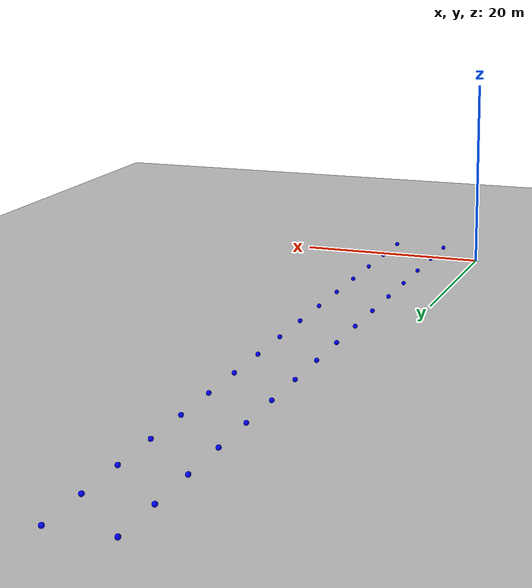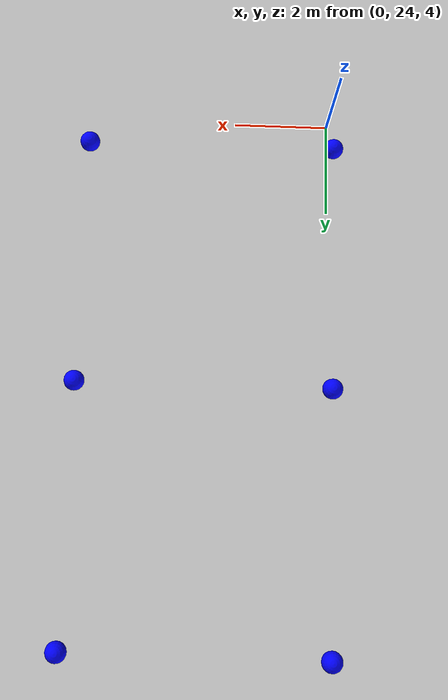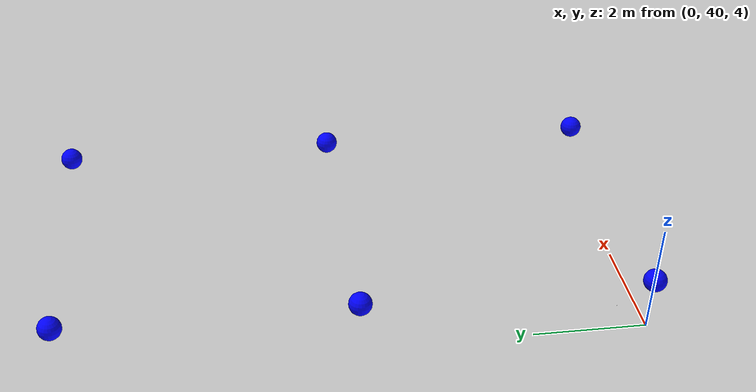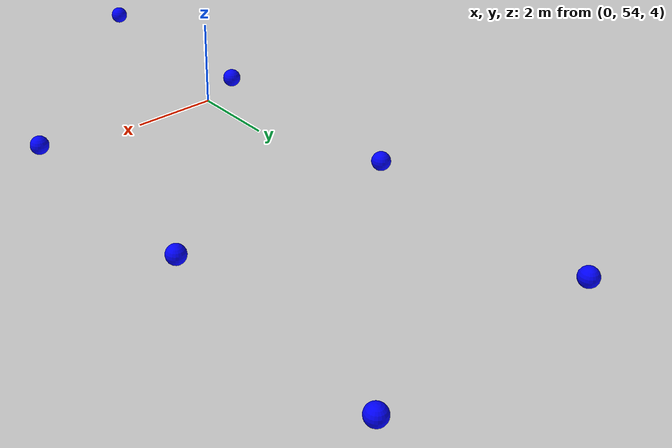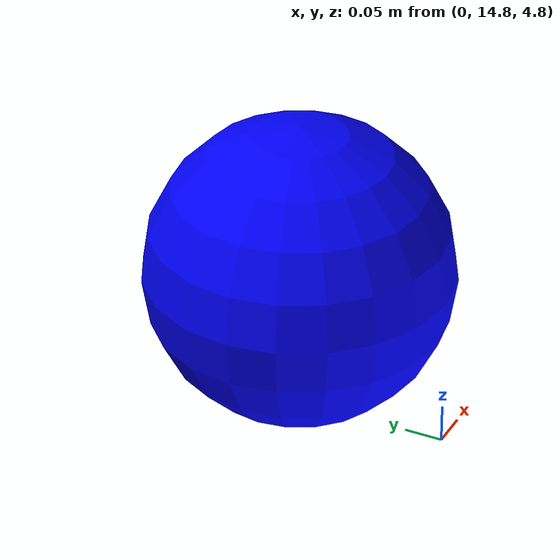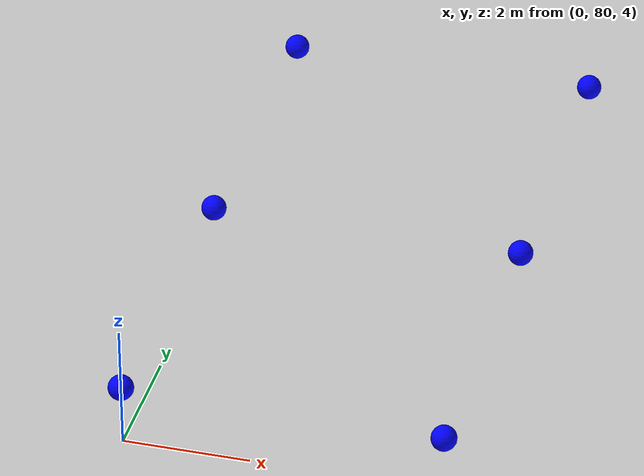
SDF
<sdf version="1.7">
 <world name="default">
  <physics type="ode">
   <ode>
    <solver>
     <type>quick</type>
     <iters>100</iters>
     <sor>1</sor>
     <use_dynamic_moi_rescaling>0</use_dynamic_moi_rescaling>
    </solver>
    <constraints>
     <cfm>0</cfm>
     <erp>0.9</erp>
     <contact_max_correcting_vel>0.1</contact_max_correcting_vel>
     <contact_surface_layer>0</contact_surface_layer>
    </constraints>
   </ode>
   <max_step_size>0.001</max_step_size>
   <real_time_factor>1</real_time_factor>
  </physics>
  <model name="ground_plane">
   <pose>0 520 0 0 0 -1.5708</pose>
   <static>1</static>
   <link name="link">
    <collision name="collision">
     <geometry><plane><normal>0 0 1</normal><size>5000 5000</size></plane></geometry>
     <surface><friction><ode><mu>1</mu><mu2>1</mu2></ode></friction></surface>
    </collision>
    <visual name="runway">
     <pose>0 0 0.005 0 -0 0</pose>
     <cast_shadows>0</cast_shadows>
     <geometry><plane><normal>0 0 1</normal><size>1829 45</size></plane></geometry>
     <material>
      <script><uri>file://media/materials/scripts/gazebo.material</uri><name>Gazebo/Runway</name></script>
     </material>
    </visual>
    <visual name="grass">
     <pose>0 0 -0.1 0 -0 0</pose>
     <cast_shadows>0</cast_shadows>
     <geometry><plane><normal>0 0 1</normal><size>5000 5000</size></plane></geometry>
     <material>
      <script><uri>file://media/materials/scripts/gazebo.material</uri><name>Gazebo/Grass</name></script>
     </material>
    </visual>
   </link>
  </model>
  <light name="sun" type="directional">
   <pose>0 0 10 0 -0 0</pose>
   <diffuse>0.8 0.8 0.8 1</diffuse>
   <specular>0.2 0.2 0.2 1</specular>
   <attenuation>
    <range>1000</range>
    <constant>0.9</constant>
    <linear>0.01</linear>
    <quadratic>0.001</quadratic>
   </attenuation>
   <direction>-0.5 0.1 -0.9</direction>
   <spot><inner_angle>0</inner_angle><outer_angle>0</outer_angle><falloff>0</falloff></spot>
  </light>
  <gravity>0 0 -9.8</gravity>
  <magnetic_field>6e-06 2.3e-05 -4.2e-05</magnetic_field>
  <atmosphere type="adiabatic"/>
  <scene><ambient>0.4 0.4 0.4 1</ambient><background>0.7 0.7 0.7 1</background><shadows>1</shadows></scene>
  <spherical_coordinates>
   <surface_model>EARTH_WGS84</surface_model>
   <latitude_deg>0</latitude_deg>
   <longitude_deg>0</longitude_deg>
   <elevation>0</elevation>
   <heading_deg>0</heading_deg>
  </spherical_coordinates>
  <model name="origin.origin">
   <link name="link">
    <inertial>
     <inertia><ixx>0.1</ixx><ixy>0</ixy><ixz>0</ixz><iyy>0.1</iyy><iyz>0</iyz><izz>0.1</izz></inertia>
     <mass>1</mass>
    </inertial>
    <gravity>0</gravity>
    <visual name="visual">
     <geometry><sphere><radius>0.2</radius></sphere></geometry>
     <material>
      <script><name>Gazebo/Grey</name><uri>file://media/materials/scripts/gazebo.material</uri></script>
      <shader type="pixel"><normal_map>__default__</normal_map></shader>
      <ambient>0.3 0.3 0.3 1</ambient>
      <diffuse>1.0 1.0 1.0 1</diffuse>
      <specular>0.01 0.01 0.01 1</specular>
      <emissive>0 0 0 1</emissive>
     </material>
     <transparency>0.05</transparency>
    </visual>
   </link>
   <static>0</static>
  </model>
  <model name="traj_1.0">
   <pose>0.0 15.0 5.0 0 0 0</pose>
   <link name="link">
    <inertial>
     <inertia><ixx>0.1</ixx><ixy>0</ixy><ixz>0</ixz><iyy>0.1</iyy><iyz>0</iyz><izz>0.1</izz></inertia>
     <mass>1</mass>
    </inertial>
    <gravity>0</gravity>
    <visual name="visual">
     <geometry><sphere><radius>0.2</radius></sphere></geometry>
     <material>
      <script><name>Gazebo/Grey</name><uri>file://media/materials/scripts/gazebo.material</uri></script>
      <shader type="pixel"><normal_map>__default__</normal_map></shader>
      <ambient>0.3 0.3 0.3 1</ambient>
      <diffuse>0.0 0.0 1.0 1</diffuse>
      <specular>0.01 0.01 0.01 1</specular>
      <emissive>0 0 0 1</emissive>
     </material>
     <transparency>0.05</transparency>
    </visual>
   </link>
   <static>0</static>
  </model>
  <model name="traj_1.1">
   <pose>0.0 20.0 5.0 0 0 0</pose>
   <link name="link">
    <inertial>
     <inertia><ixx>0.1</ixx><ixy>0</ixy><ixz>0</ixz><iyy>0.1</iyy><iyz>0</iyz><izz>0.1</izz></inertia>
     <mass>1</mass>
    </inertial>
    <gravity>0</gravity>
    <visual name="visual">
     <geometry><sphere><radius>0.2</radius></sphere></geometry>
     <material>
      <script><name>Gazebo/Grey</name><uri>file://media/materials/scripts/gazebo.material</uri></script>
      <shader type="pixel"><normal_map>__default__</normal_map></shader>
      <ambient>0.3 0.3 0.3 1</ambient>
      <diffuse>0.0 0.0 1.0 1</diffuse>
      <specular>0.01 0.01 0.01 1</specular>
      <emissive>0 0 0 1</emissive>
     </material>
     <transparency>0.05</transparency>
    </visual>
   </link>
   <static>0</static>
  </model>
  <model name="traj_1.2">
   <pose>5.0 20.0 5.0 0 0 0</pose>
   <link name="link">
    <inertial>
     <inertia><ixx>0.1</ixx><ixy>0</ixy><ixz>0</ixz><iyy>0.1</iyy><iyz>0</iyz><izz>0.1</izz></inertia>
     <mass>1</mass>
    </inertial>
    <gravity>0</gravity>
    <visual name="visual">
     <geometry><sphere><radius>0.2</radius></sphere></geometry>
     <material>
      <script><name>Gazebo/Grey</name><uri>file://media/materials/scripts/gazebo.material</uri></script>
      <shader type="pixel"><normal_map>__default__</normal_map></shader>
      <ambient>0.3 0.3 0.3 1</ambient>
      <diffuse>0.0 0.0 1.0 1</diffuse>
      <specular>0.01 0.01 0.01 1</specular>
      <emissive>0 0 0 1</emissive>
     </material>
     <transparency>0.05</transparency>
    </visual>
   </link>
   <static>0</static>
  </model>
  <model name="traj_1.3">
   <pose>5.0 15.0 5.0 0 0 0</pose>
   <link name="link">
    <inertial>
     <inertia><ixx>0.1</ixx><ixy>0</ixy><ixz>0</ixz><iyy>0.1</iyy><iyz>0</iyz><izz>0.1</izz></inertia>
     <mass>1</mass>
    </inertial>
    <gravity>0</gravity>
    <visual name="visual">
     <geometry><sphere><radius>0.2</radius></sphere></geometry>
     <material>
      <script><name>Gazebo/Grey</name><uri>file://media/materials/scripts/gazebo.material</uri></script>
      <shader type="pixel"><normal_map>__default__</normal_map></shader>
      <ambient>0.3 0.3 0.3 1</ambient>
      <diffuse>0.0 0.0 1.0 1</diffuse>
      <specular>0.01 0.01 0.01 1</specular>
      <emissive>0 0 0 1</emissive>
     </material>
     <transparency>0.05</transparency>
    </visual>
   </link>
   <static>0</static>
  </model>
  <model name="traj_1.4">
   <pose>0.0 15.0 5.0 0 0 0</pose>
   <link name="link">
    <inertial>
     <inertia><ixx>0.1</ixx><ixy>0</ixy><ixz>0</ixz><iyy>0.1</iyy><iyz>0</iyz><izz>0.1</izz></inertia>
     <mass>1</mass>
    </inertial>
    <gravity>0</gravity>
    <visual name="visual">
     <geometry><sphere><radius>0.2</radius></sphere></geometry>
     <material>
      <script><name>Gazebo/Grey</name><uri>file://media/materials/scripts/gazebo.material</uri></script>
      <shader type="pixel"><normal_map>__default__</normal_map></shader>
      <ambient>0.3 0.3 0.3 1</ambient>
      <diffuse>0.0 0.0 1.0 1</diffuse>
      <specular>0.01 0.01 0.01 1</specular>
      <emissive>0 0 0 1</emissive>
     </material>
     <transparency>0.05</transparency>
    </visual>
   </link>
   <static>0</static>
  </model>
  <model name="traj_2.0">
   <pose>0.0 25.0 5.0 0 0 0</pose>
   <link name="link">
    <inertial>
     <inertia><ixx>0.1</ixx><ixy>0</ixy><ixz>0</ixz><iyy>0.1</iyy><iyz>0</iyz><izz>0.1</izz></inertia>
     <mass>1</mass>
    </inertial>
    <gravity>0</gravity>
    <visual name="visual">
     <geometry><sphere><radius>0.2</radius></sphere></geometry>
     <material>
      <script><name>Gazebo/Grey</name><uri>file://media/materials/scripts/gazebo.material</uri></script>
      <shader type="pixel"><normal_map>__default__</normal_map></shader>
      <ambient>0.3 0.3 0.3 1</ambient>
      <diffuse>0.0 0.0 1.0 1</diffuse>
      <specular>0.01 0.01 0.01 1</specular>
      <emissive>0 0 0 1</emissive>
     </material>
     <transparency>0.05</transparency>
    </visual>
   </link>
   <static>0</static>
  </model>
  <model name="traj_2.1">
   <pose>0.0 30.0 5.0 0 0 0</pose>
   <link name="link">
    <inertial>
     <inertia><ixx>0.1</ixx><ixy>0</ixy><ixz>0</ixz><iyy>0.1</iyy><iyz>0</iyz><izz>0.1</izz></inertia>
     <mass>1</mass>
    </inertial>
    <gravity>0</gravity>
    <visual name="visual">
     <geometry><sphere><radius>0.2</radius></sphere></geometry>
     <material>
      <script><name>Gazebo/Grey</name><uri>file://media/materials/scripts/gazebo.material</uri></script>
      <shader type="pixel"><normal_map>__default__</normal_map></shader>
      <ambient>0.3 0.3 0.3 1</ambient>
      <diffuse>0.0 0.0 1.0 1</diffuse>
      <specular>0.01 0.01 0.01 1</specular>
      <emissive>0 0 0 1</emissive>
     </material>
     <transparency>0.05</transparency>
    </visual>
   </link>
   <static>0</static>
  </model>
  <model name="traj_2.2">
   <pose>5.0 30.0 5.0 0 0 0</pose>
   <link name="link">
    <inertial>
     <inertia><ixx>0.1</ixx><ixy>0</ixy><ixz>0</ixz><iyy>0.1</iyy><iyz>0</iyz><izz>0.1</izz></inertia>
     <mass>1</mass>
    </inertial>
    <gravity>0</gravity>
    <visual name="visual">
     <geometry><sphere><radius>0.2</radius></sphere></geometry>
     <material>
      <script><name>Gazebo/Grey</name><uri>file://media/materials/scripts/gazebo.material</uri></script>
      <shader type="pixel"><normal_map>__default__</normal_map></shader>
      <ambient>0.3 0.3 0.3 1</ambient>
      <diffuse>0.0 0.0 1.0 1</diffuse>
      <specular>0.01 0.01 0.01 1</specular>
      <emissive>0 0 0 1</emissive>
     </material>
     <transparency>0.05</transparency>
    </visual>
   </link>
   <static>0</static>
  </model>
  <model name="traj_2.3">
   <pose>5.0 25.0 5.0 0 0 0</pose>
   <link name="link">
    <inertial>
     <inertia><ixx>0.1</ixx><ixy>0</ixy><ixz>0</ixz><iyy>0.1</iyy><iyz>0</iyz><izz>0.1</izz></inertia>
     <mass>1</mass>
    </inertial>
    <gravity>0</gravity>
    <visual name="visual">
     <geometry><sphere><radius>0.2</radius></sphere></geometry>
     <material>
      <script><name>Gazebo/Grey</name><uri>file://media/materials/scripts/gazebo.material</uri></script>
      <shader type="pixel"><normal_map>__default__</normal_map></shader>
      <ambient>0.3 0.3 0.3 1</ambient>
      <diffuse>0.0 0.0 1.0 1</diffuse>
      <specular>0.01 0.01 0.01 1</specular>
      <emissive>0 0 0 1</emissive>
     </material>
     <transparency>0.05</transparency>
    </visual>
   </link>
   <static>0</static>
  </model>
  <model name="traj_2.4">
   <pose>0.0 25.0 5.0 0 0 0</pose>
   <link name="link">
    <inertial>
     <inertia><ixx>0.1</ixx><ixy>0</ixy><ixz>0</ixz><iyy>0.1</iyy><iyz>0</iyz><izz>0.1</izz></inertia>
     <mass>1</mass>
    </inertial>
    <gravity>0</gravity>
    <visual name="visual">
     <geometry><sphere><radius>0.2</radius></sphere></geometry>
     <material>
      <script><name>Gazebo/Grey</name><uri>file://media/materials/scripts/gazebo.material</uri></script>
      <shader type="pixel"><normal_map>__default__</normal_map></shader>
      <ambient>0.3 0.3 0.3 1</ambient>
      <diffuse>0.0 0.0 1.0 1</diffuse>
      <specular>0.01 0.01 0.01 1</specular>
      <emissive>0 0 0 1</emissive>
     </material>
     <transparency>0.05</transparency>
    </visual>
   </link>
   <static>0</static>
  </model>
  <model name="traj_3.0">
   <pose>0.0 35.0 5.0 0 0 0</pose>
   <link name="link">
    <inertial>
     <inertia><ixx>0.1</ixx><ixy>0</ixy><ixz>0</ixz><iyy>0.1</iyy><iyz>0</iyz><izz>0.1</izz></inertia>
     <mass>1</mass>
    </inertial>
    <gravity>0</gravity>
    <visual name="visual">
     <geometry><sphere><radius>0.2</radius></sphere></geometry>
     <material>
      <script><name>Gazebo/Grey</name><uri>file://media/materials/scripts/gazebo.material</uri></script>
      <shader type="pixel"><normal_map>__default__</normal_map></shader>
      <ambient>0.3 0.3 0.3 1</ambient>
      <diffuse>0.0 0.0 1.0 1</diffuse>
      <specular>0.01 0.01 0.01 1</specular>
      <emissive>0 0 0 1</emissive>
     </material>
     <transparency>0.05</transparency>
    </visual>
   </link>
   <static>0</static>
  </model>
  <model name="traj_3.1">
   <pose>0.0 40.0 5.0 0 0 0</pose>
   <link name="link">
    <inertial>
     <inertia><ixx>0.1</ixx><ixy>0</ixy><ixz>0</ixz><iyy>0.1</iyy><iyz>0</iyz><izz>0.1</izz></inertia>
     <mass>1</mass>
    </inertial>
    <gravity>0</gravity>
    <visual name="visual">
     <geometry><sphere><radius>0.2</radius></sphere></geometry>
     <material>
      <script><name>Gazebo/Grey</name><uri>file://media/materials/scripts/gazebo.material</uri></script>
      <shader type="pixel"><normal_map>__default__</normal_map></shader>
      <ambient>0.3 0.3 0.3 1</ambient>
      <diffuse>0.0 0.0 1.0 1</diffuse>
      <specular>0.01 0.01 0.01 1</specular>
      <emissive>0 0 0 1</emissive>
     </material>
     <transparency>0.05</transparency>
    </visual>
   </link>
   <static>0</static>
  </model>
  <model name="traj_3.2">
   <pose>5.0 40.0 5.0 0 0 0</pose>
   <link name="link">
    <inertial>
     <inertia><ixx>0.1</ixx><ixy>0</ixy><ixz>0</ixz><iyy>0.1</iyy><iyz>0</iyz><izz>0.1</izz></inertia>
     <mass>1</mass>
    </inertial>
    <gravity>0</gravity>
    <visual name="visual">
     <geometry><sphere><radius>0.2</radius></sphere></geometry>
     <material>
      <script><name>Gazebo/Grey</name><uri>file://media/materials/scripts/gazebo.material</uri></script>
      <shader type="pixel"><normal_map>__default__</normal_map></shader>
      <ambient>0.3 0.3 0.3 1</ambient>
      <diffuse>0.0 0.0 1.0 1</diffuse>
      <specular>0.01 0.01 0.01 1</specular>
      <emissive>0 0 0 1</emissive>
     </material>
     <transparency>0.05</transparency>
    </visual>
   </link>
   <static>0</static>
  </model>
  <model name="traj_3.3">
   <pose>5.0 35.0 5.0 0 0 0</pose>
   <link name="link">
    <inertial>
     <inertia><ixx>0.1</ixx><ixy>0</ixy><ixz>0</ixz><iyy>0.1</iyy><iyz>0</iyz><izz>0.1</izz></inertia>
     <mass>1</mass>
    </inertial>
    <gravity>0</gravity>
    <visual name="visual">
     <geometry><sphere><radius>0.2</radius></sphere></geometry>
     <material>
      <script><name>Gazebo/Grey</name><uri>file://media/materials/scripts/gazebo.material</uri></script>
      <shader type="pixel"><normal_map>__default__</normal_map></shader>
      <ambient>0.3 0.3 0.3 1</ambient>
      <diffuse>0.0 0.0 1.0 1</diffuse>
      <specular>0.01 0.01 0.01 1</specular>
      <emissive>0 0 0 1</emissive>
     </material>
     <transparency>0.05</transparency>
    </visual>
   </link>
   <static>0</static>
  </model>
  <model name="traj_3.4">
   <pose>0.0 35.0 5.0 0 0 0</pose>
   <link name="link">
    <inertial>
     <inertia><ixx>0.1</ixx><ixy>0</ixy><ixz>0</ixz><iyy>0.1</iyy><iyz>0</iyz><izz>0.1</izz></inertia>
     <mass>1</mass>
    </inertial>
    <gravity>0</gravity>
    <visual name="visual">
     <geometry><sphere><radius>0.2</radius></sphere></geometry>
     <material>
      <script><name>Gazebo/Grey</name><uri>file://media/materials/scripts/gazebo.material</uri></script>
      <shader type="pixel"><normal_map>__default__</normal_map></shader>
      <ambient>0.3 0.3 0.3 1</ambient>
      <diffuse>0.0 0.0 1.0 1</diffuse>
      <specular>0.01 0.01 0.01 1</specular>
      <emissive>0 0 0 1</emissive>
     </material>
     <transparency>0.05</transparency>
    </visual>
   </link>
   <static>0</static>
  </model>
  <model name="traj_4.0">
   <pose>0.0 45.0 5.0 0 0 0</pose>
   <link name="link">
    <inertial>
     <inertia><ixx>0.1</ixx><ixy>0</ixy><ixz>0</ixz><iyy>0.1</iyy><iyz>0</iyz><izz>0.1</izz></inertia>
     <mass>1</mass>
    </inertial>
    <gravity>0</gravity>
    <visual name="visual">
     <geometry><sphere><radius>0.2</radius></sphere></geometry>
     <material>
      <script><name>Gazebo/Grey</name><uri>file://media/materials/scripts/gazebo.material</uri></script>
      <shader type="pixel"><normal_map>__default__</normal_map></shader>
      <ambient>0.3 0.3 0.3 1</ambient>
      <diffuse>0.0 0.0 1.0 1</diffuse>
      <specular>0.01 0.01 0.01 1</specular>
      <emissive>0 0 0 1</emissive>
     </material>
     <transparency>0.05</transparency>
    </visual>
   </link>
   <static>0</static>
  </model>
  <model name="traj_4.1">
   <pose>0.0 50.0 5.0 0 0 0</pose>
   <link name="link">
    <inertial>
     <inertia><ixx>0.1</ixx><ixy>0</ixy><ixz>0</ixz><iyy>0.1</iyy><iyz>0</iyz><izz>0.1</izz></inertia>
     <mass>1</mass>
    </inertial>
    <gravity>0</gravity>
    <visual name="visual">
     <geometry><sphere><radius>0.2</radius></sphere></geometry>
     <material>
      <script><name>Gazebo/Grey</name><uri>file://media/materials/scripts/gazebo.material</uri></script>
      <shader type="pixel"><normal_map>__default__</normal_map></shader>
      <ambient>0.3 0.3 0.3 1</ambient>
      <diffuse>0.0 0.0 1.0 1</diffuse>
      <specular>0.01 0.01 0.01 1</specular>
      <emissive>0 0 0 1</emissive>
     </material>
     <transparency>0.05</transparency>
    </visual>
   </link>
   <static>0</static>
  </model>
  <model name="traj_4.2">
   <pose>5.0 50.0 5.0 0 0 0</pose>
   <link name="link">
    <inertial>
     <inertia><ixx>0.1</ixx><ixy>0</ixy><ixz>0</ixz><iyy>0.1</iyy><iyz>0</iyz><izz>0.1</izz></inertia>
     <mass>1</mass>
    </inertial>
    <gravity>0</gravity>
    <visual name="visual">
     <geometry><sphere><radius>0.2</radius></sphere></geometry>
     <material>
      <script><name>Gazebo/Grey</name><uri>file://media/materials/scripts/gazebo.material</uri></script>
      <shader type="pixel"><normal_map>__default__</normal_map></shader>
      <ambient>0.3 0.3 0.3 1</ambient>
      <diffuse>0.0 0.0 1.0 1</diffuse>
      <specular>0.01 0.01 0.01 1</specular>
      <emissive>0 0 0 1</emissive>
     </material>
     <transparency>0.05</transparency>
    </visual>
   </link>
   <static>0</static>
  </model>
  <model name="traj_4.3">
   <pose>5.0 45.0 5.0 0 0 0</pose>
   <link name="link">
    <inertial>
     <inertia><ixx>0.1</ixx><ixy>0</ixy><ixz>0</ixz><iyy>0.1</iyy><iyz>0</iyz><izz>0.1</izz></inertia>
     <mass>1</mass>
    </inertial>
    <gravity>0</gravity>
    <visual name="visual">
     <geometry><sphere><radius>0.2</radius></sphere></geometry>
     <material>
      <script><name>Gazebo/Grey</name><uri>file://media/materials/scripts/gazebo.material</uri></script>
      <shader type="pixel"><normal_map>__default__</normal_map></shader>
      <ambient>0.3 0.3 0.3 1</ambient>
      <diffuse>0.0 0.0 1.0 1</diffuse>
      <specular>0.01 0.01 0.01 1</specular>
      <emissive>0 0 0 1</emissive>
     </material>
     <transparency>0.05</transparency>
    </visual>
   </link>
   <static>0</static>
  </model>
  <model name="traj_4.4">
   <pose>0.0 45.0 5.0 0 0 0</pose>
   <link name="link">
    <inertial>
     <inertia><ixx>0.1</ixx><ixy>0</ixy><ixz>0</ixz><iyy>0.1</iyy><iyz>0</iyz><izz>0.1</izz></inertia>
     <mass>1</mass>
    </inertial>
    <gravity>0</gravity>
    <visual name="visual">
     <geometry><sphere><radius>0.2</radius></sphere></geometry>
     <material>
      <script><name>Gazebo/Grey</name><uri>file://media/materials/scripts/gazebo.material</uri></script>
      <shader type="pixel"><normal_map>__default__</normal_map></shader>
      <ambient>0.3 0.3 0.3 1</ambient>
      <diffuse>0.0 0.0 1.0 1</diffuse>
      <specular>0.01 0.01 0.01 1</specular>
      <emissive>0 0 0 1</emissive>
     </material>
     <transparency>0.05</transparency>
    </visual>
   </link>
   <static>0</static>
  </model>
  <model name="traj_5.0">
   <pose>0.0 55.0 5.0 0 0 0</pose>
   <link name="link">
    <inertial>
     <inertia><ixx>0.1</ixx><ixy>0</ixy><ixz>0</ixz><iyy>0.1</iyy><iyz>0</iyz><izz>0.1</izz></inertia>
     <mass>1</mass>
    </inertial>
    <gravity>0</gravity>
    <visual name="visual">
     <geometry><sphere><radius>0.2</radius></sphere></geometry>
     <material>
      <script><name>Gazebo/Grey</name><uri>file://media/materials/scripts/gazebo.material</uri></script>
      <shader type="pixel"><normal_map>__default__</normal_map></shader>
      <ambient>0.3 0.3 0.3 1</ambient>
      <diffuse>0.0 0.0 1.0 1</diffuse>
      <specular>0.01 0.01 0.01 1</specular>
      <emissive>0 0 0 1</emissive>
     </material>
     <transparency>0.05</transparency>
    </visual>
   </link>
   <static>0</static>
  </model>
  <model name="traj_5.1">
   <pose>0.0 60.0 5.0 0 0 0</pose>
   <link name="link">
    <inertial>
     <inertia><ixx>0.1</ixx><ixy>0</ixy><ixz>0</ixz><iyy>0.1</iyy><iyz>0</iyz><izz>0.1</izz></inertia>
     <mass>1</mass>
    </inertial>
    <gravity>0</gravity>
    <visual name="visual">
     <geometry><sphere><radius>0.2</radius></sphere></geometry>
     <material>
      <script><name>Gazebo/Grey</name><uri>file://media/materials/scripts/gazebo.material</uri></script>
      <shader type="pixel"><normal_map>__default__</normal_map></shader>
      <ambient>0.3 0.3 0.3 1</ambient>
      <diffuse>0.0 0.0 1.0 1</diffuse>
      <specular>0.01 0.01 0.01 1</specular>
      <emissive>0 0 0 1</emissive>
     </material>
     <transparency>0.05</transparency>
    </visual>
   </link>
   <static>0</static>
  </model>
  <model name="traj_5.2">
   <pose>5.0 60.0 5.0 0 0 0</pose>
   <link name="link">
    <inertial>
     <inertia><ixx>0.1</ixx><ixy>0</ixy><ixz>0</ixz><iyy>0.1</iyy><iyz>0</iyz><izz>0.1</izz></inertia>
     <mass>1</mass>
    </inertial>
    <gravity>0</gravity>
    <visual name="visual">
     <geometry><sphere><radius>0.2</radius></sphere></geometry>
     <material>
      <script><name>Gazebo/Grey</name><uri>file://media/materials/scripts/gazebo.material</uri></script>
      <shader type="pixel"><normal_map>__default__</normal_map></shader>
      <ambient>0.3 0.3 0.3 1</ambient>
      <diffuse>0.0 0.0 1.0 1</diffuse>
      <specular>0.01 0.01 0.01 1</specular>
      <emissive>0 0 0 1</emissive>
     </material>
     <transparency>0.05</transparency>
    </visual>
   </link>
   <static>0</static>
  </model>
  <model name="traj_5.3">
   <pose>5.0 55.0 5.0 0 0 0</pose>
   <link name="link">
    <inertial>
     <inertia><ixx>0.1</ixx><ixy>0</ixy><ixz>0</ixz><iyy>0.1</iyy><iyz>0</iyz><izz>0.1</izz></inertia>
     <mass>1</mass>
    </inertial>
    <gravity>0</gravity>
    <visual name="visual">
     <geometry><sphere><radius>0.2</radius></sphere></geometry>
     <material>
      <script><name>Gazebo/Grey</name><uri>file://media/materials/scripts/gazebo.material</uri></script>
      <shader type="pixel"><normal_map>__default__</normal_map></shader>
      <ambient>0.3 0.3 0.3 1</ambient>
      <diffuse>0.0 0.0 1.0 1</diffuse>
      <specular>0.01 0.01 0.01 1</specular>
      <emissive>0 0 0 1</emissive>
     </material>
     <transparency>0.05</transparency>
    </visual>
   </link>
   <static>0</static>
  </model>
  <model name="traj_5.4">
   <pose>0.0 55.0 5.0 0 0 0</pose>
   <link name="link">
    <inertial>
     <inertia><ixx>0.1</ixx><ixy>0</ixy><ixz>0</ixz><iyy>0.1</iyy><iyz>0</iyz><izz>0.1</izz></inertia>
     <mass>1</mass>
    </inertial>
    <gravity>0</gravity>
    <visual name="visual">
     <geometry><sphere><radius>0.2</radius></sphere></geometry>
     <material>
      <script><name>Gazebo/Grey</name><uri>file://media/materials/scripts/gazebo.material</uri></script>
      <shader type="pixel"><normal_map>__default__</normal_map></shader>
      <ambient>0.3 0.3 0.3 1</ambient>
      <diffuse>0.0 0.0 1.0 1</diffuse>
      <specular>0.01 0.01 0.01 1</specular>
      <emissive>0 0 0 1</emissive>
     </material>
     <transparency>0.05</transparency>
    </visual>
   </link>
   <static>0</static>
  </model>
  <model name="traj_6.0">
   <pose>0.0 65.0 5.0 0 0 0</pose>
   <link name="link">
    <inertial>
     <inertia><ixx>0.1</ixx><ixy>0</ixy><ixz>0</ixz><iyy>0.1</iyy><iyz>0</iyz><izz>0.1</izz></inertia>
     <mass>1</mass>
    </inertial>
    <gravity>0</gravity>
    <visual name="visual">
     <geometry><sphere><radius>0.2</radius></sphere></geometry>
     <material>
      <script><name>Gazebo/Grey</name><uri>file://media/materials/scripts/gazebo.material</uri></script>
      <shader type="pixel"><normal_map>__default__</normal_map></shader>
      <ambient>0.3 0.3 0.3 1</ambient>
      <diffuse>0.0 0.0 1.0 1</diffuse>
      <specular>0.01 0.01 0.01 1</specular>
      <emissive>0 0 0 1</emissive>
     </material>
     <transparency>0.05</transparency>
    </visual>
   </link>
   <static>0</static>
  </model>
  <model name="traj_6.1">
   <pose>0.0 70.0 5.0 0 0 0</pose>
   <link name="link">
    <inertial>
     <inertia><ixx>0.1</ixx><ixy>0</ixy><ixz>0</ixz><iyy>0.1</iyy><iyz>0</iyz><izz>0.1</izz></inertia>
     <mass>1</mass>
    </inertial>
    <gravity>0</gravity>
    <visual name="visual">
     <geometry><sphere><radius>0.2</radius></sphere></geometry>
     <material>
      <script><name>Gazebo/Grey</name><uri>file://media/materials/scripts/gazebo.material</uri></script>
      <shader type="pixel"><normal_map>__default__</normal_map></shader>
      <ambient>0.3 0.3 0.3 1</ambient>
      <diffuse>0.0 0.0 1.0 1</diffuse>
      <specular>0.01 0.01 0.01 1</specular>
      <emissive>0 0 0 1</emissive>
     </material>
     <transparency>0.05</transparency>
    </visual>
   </link>
   <static>0</static>
  </model>
  <model name="traj_6.2">
   <pose>5.0 70.0 5.0 0 0 0</pose>
   <link name="link">
    <inertial>
     <inertia><ixx>0.1</ixx><ixy>0</ixy><ixz>0</ixz><iyy>0.1</iyy><iyz>0</iyz><izz>0.1</izz></inertia>
     <mass>1</mass>
    </inertial>
    <gravity>0</gravity>
    <visual name="visual">
     <geometry><sphere><radius>0.2</radius></sphere></geometry>
     <material>
      <script><name>Gazebo/Grey</name><uri>file://media/materials/scripts/gazebo.material</uri></script>
      <shader type="pixel"><normal_map>__default__</normal_map></shader>
      <ambient>0.3 0.3 0.3 1</ambient>
      <diffuse>0.0 0.0 1.0 1</diffuse>
      <specular>0.01 0.01 0.01 1</specular>
      <emissive>0 0 0 1</emissive>
     </material>
     <transparency>0.05</transparency>
    </visual>
   </link>
   <static>0</static>
  </model>
  <model name="traj_6.3">
   <pose>5.0 65.0 5.0 0 0 0</pose>
   <link name="link">
    <inertial>
     <inertia><ixx>0.1</ixx><ixy>0</ixy><ixz>0</ixz><iyy>0.1</iyy><iyz>0</iyz><izz>0.1</izz></inertia>
     <mass>1</mass>
    </inertial>
    <gravity>0</gravity>
    <visual name="visual">
     <geometry><sphere><radius>0.2</radius></sphere></geometry>
     <material>
      <script><name>Gazebo/Grey</name><uri>file://media/materials/scripts/gazebo.material</uri></script>
      <shader type="pixel"><normal_map>__default__</normal_map></shader>
      <ambient>0.3 0.3 0.3 1</ambient>
      <diffuse>0.0 0.0 1.0 1</diffuse>
      <specular>0.01 0.01 0.01 1</specular>
      <emissive>0 0 0 1</emissive>
     </material>
     <transparency>0.05</transparency>
    </visual>
   </link>
   <static>0</static>
  </model>
  <model name="traj_6.4">
   <pose>0.0 65.0 5.0 0 0 0</pose>
   <link name="link">
    <inertial>
     <inertia><ixx>0.1</ixx><ixy>0</ixy><ixz>0</ixz><iyy>0.1</iyy><iyz>0</iyz><izz>0.1</izz></inertia>
     <mass>1</mass>
    </inertial>
    <gravity>0</gravity>
    <visual name="visual">
     <geometry><sphere><radius>0.2</radius></sphere></geometry>
     <material>
      <script><name>Gazebo/Grey</name><uri>file://media/materials/scripts/gazebo.material</uri></script>
      <shader type="pixel"><normal_map>__default__</normal_map></shader>
      <ambient>0.3 0.3 0.3 1</ambient>
      <diffuse>0.0 0.0 1.0 1</diffuse>
      <specular>0.01 0.01 0.01 1</specular>
      <emissive>0 0 0 1</emissive>
     </material>
     <transparency>0.05</transparency>
    </visual>
   </link>
   <static>0</static>
  </model>
  <model name="traj_7.0">
   <pose>0.0 75.0 5.0 0 0 0</pose>
   <link name="link">
    <inertial>
     <inertia><ixx>0.1</ixx><ixy>0</ixy><ixz>0</ixz><iyy>0.1</iyy><iyz>0</iyz><izz>0.1</izz></inertia>
     <mass>1</mass>
    </inertial>
    <gravity>0</gravity>
    <visual name="visual">
     <geometry><sphere><radius>0.2</radius></sphere></geometry>
     <material>
      <script><name>Gazebo/Grey</name><uri>file://media/materials/scripts/gazebo.material</uri></script>
      <shader type="pixel"><normal_map>__default__</normal_map></shader>
      <ambient>0.3 0.3 0.3 1</ambient>
      <diffuse>0.0 0.0 1.0 1</diffuse>
      <specular>0.01 0.01 0.01 1</specular>
      <emissive>0 0 0 1</emissive>
     </material>
     <transparency>0.05</transparency>
    </visual>
   </link>
   <static>0</static>
  </model>
  <model name="traj_7.1">
   <pose>0.0 80.0 5.0 0 0 0</pose>
   <link name="link">
    <inertial>
     <inertia><ixx>0.1</ixx><ixy>0</ixy><ixz>0</ixz><iyy>0.1</iyy><iyz>0</iyz><izz>0.1</izz></inertia>
     <mass>1</mass>
    </inertial>
    <gravity>0</gravity>
    <visual name="visual">
     <geometry><sphere><radius>0.2</radius></sphere></geometry>
     <material>
      <script><name>Gazebo/Grey</name><uri>file://media/materials/scripts/gazebo.material</uri></script>
      <shader type="pixel"><normal_map>__default__</normal_map></shader>
      <ambient>0.3 0.3 0.3 1</ambient>
      <diffuse>0.0 0.0 1.0 1</diffuse>
      <specular>0.01 0.01 0.01 1</specular>
      <emissive>0 0 0 1</emissive>
     </material>
     <transparency>0.05</transparency>
    </visual>
   </link>
   <static>0</static>
  </model>
  <model name="traj_7.2">
   <pose>5.0 80.0 5.0 0 0 0</pose>
   <link name="link">
    <inertial>
     <inertia><ixx>0.1</ixx><ixy>0</ixy><ixz>0</ixz><iyy>0.1</iyy><iyz>0</iyz><izz>0.1</izz></inertia>
     <mass>1</mass>
    </inertial>
    <gravity>0</gravity>
    <visual name="visual">
     <geometry><sphere><radius>0.2</radius></sphere></geometry>
     <material>
      <script><name>Gazebo/Grey</name><uri>file://media/materials/scripts/gazebo.material</uri></script>
      <shader type="pixel"><normal_map>__default__</normal_map></shader>
      <ambient>0.3 0.3 0.3 1</ambient>
      <diffuse>0.0 0.0 1.0 1</diffuse>
      <specular>0.01 0.01 0.01 1</specular>
      <emissive>0 0 0 1</emissive>
     </material>
     <transparency>0.05</transparency>
    </visual>
   </link>
   <static>0</static>
  </model>
  <model name="traj_7.3">
   <pose>5.0 75.0 5.0 0 0 0</pose>
   <link name="link">
    <inertial>
     <inertia><ixx>0.1</ixx><ixy>0</ixy><ixz>0</ixz><iyy>0.1</iyy><iyz>0</iyz><izz>0.1</izz></inertia>
     <mass>1</mass>
    </inertial>
    <gravity>0</gravity>
    <visual name="visual">
     <geometry><sphere><radius>0.2</radius></sphere></geometry>
     <material>
      <script><name>Gazebo/Grey</name><uri>file://media/materials/scripts/gazebo.material</uri></script>
      <shader type="pixel"><normal_map>__default__</normal_map></shader>
      <ambient>0.3 0.3 0.3 1</ambient>
      <diffuse>0.0 0.0 1.0 1</diffuse>
      <specular>0.01 0.01 0.01 1</specular>
      <emissive>0 0 0 1</emissive>
     </material>
     <transparency>0.05</transparency>
    </visual>
   </link>
   <static>0</static>
  </model>
  <model name="traj_7.4">
   <pose>0.0 75.0 5.0 0 0 0</pose>
   <link name="link">
    <inertial>
     <inertia><ixx>0.1</ixx><ixy>0</ixy><ixz>0</ixz><iyy>0.1</iyy><iyz>0</iyz><izz>0.1</izz></inertia>
     <mass>1</mass>
    </inertial>
    <gravity>0</gravity>
    <visual name="visual">
     <geometry><sphere><radius>0.2</radius></sphere></geometry>
     <material>
      <script><name>Gazebo/Grey</name><uri>file://media/materials/scripts/gazebo.material</uri></script>
      <shader type="pixel"><normal_map>__default__</normal_map></shader>
      <ambient>0.3 0.3 0.3 1</ambient>
      <diffuse>0.0 0.0 1.0 1</diffuse>
      <specular>0.01 0.01 0.01 1</specular>
      <emissive>0 0 0 1</emissive>
     </material>
     <transparency>0.05</transparency>
    </visual>
   </link>
   <static>0</static>
  </model>
  <model name="traj_8.0">
   <pose>0.0 85.0 5.0 0 0 0</pose>
   <link name="link">
    <inertial>
     <inertia><ixx>0.1</ixx><ixy>0</ixy><ixz>0</ixz><iyy>0.1</iyy><iyz>0</iyz><izz>0.1</izz></inertia>
     <mass>1</mass>
    </inertial>
    <gravity>0</gravity>
    <visual name="visual">
     <geometry><sphere><radius>0.2</radius></sphere></geometry>
     <material>
      <script><name>Gazebo/Grey</name><uri>file://media/materials/scripts/gazebo.material</uri></script>
      <shader type="pixel"><normal_map>__default__</normal_map></shader>
      <ambient>0.3 0.3 0.3 1</ambient>
      <diffuse>0.0 0.0 1.0 1</diffuse>
      <specular>0.01 0.01 0.01 1</specular>
      <emissive>0 0 0 1</emissive>
     </material>
     <transparency>0.05</transparency>
    </visual>
   </link>
   <static>0</static>
  </model>
  <model name="traj_8.1">
   <pose>0.0 90.0 5.0 0 0 0</pose>
   <link name="link">
    <inertial>
     <inertia><ixx>0.1</ixx><ixy>0</ixy><ixz>0</ixz><iyy>0.1</iyy><iyz>0</iyz><izz>0.1</izz></inertia>
     <mass>1</mass>
    </inertial>
    <gravity>0</gravity>
    <visual name="visual">
     <geometry><sphere><radius>0.2</radius></sphere></geometry>
     <material>
      <script><name>Gazebo/Grey</name><uri>file://media/materials/scripts/gazebo.material</uri></script>
      <shader type="pixel"><normal_map>__default__</normal_map></shader>
      <ambient>0.3 0.3 0.3 1</ambient>
      <diffuse>0.0 0.0 1.0 1</diffuse>
      <specular>0.01 0.01 0.01 1</specular>
      <emissive>0 0 0 1</emissive>
     </material>
     <transparency>0.05</transparency>
    </visual>
   </link>
   <static>0</static>
  </model>
  <model name="traj_8.2">
   <pose>5.0 90.0 5.0 0 0 0</pose>
   <link name="link">
    <inertial>
     <inertia><ixx>0.1</ixx><ixy>0</ixy><ixz>0</ixz><iyy>0.1</iyy><iyz>0</iyz><izz>0.1</izz></inertia>
     <mass>1</mass>
    </inertial>
    <gravity>0</gravity>
    <visual name="visual">
     <geometry><sphere><radius>0.2</radius></sphere></geometry>
     <material>
      <script><name>Gazebo/Grey</name><uri>file://media/materials/scripts/gazebo.material</uri></script>
      <shader type="pixel"><normal_map>__default__</normal_map></shader>
      <ambient>0.3 0.3 0.3 1</ambient>
      <diffuse>0.0 0.0 1.0 1</diffuse>
      <specular>0.01 0.01 0.01 1</specular>
      <emissive>0 0 0 1</emissive>
     </material>
     <transparency>0.05</transparency>
    </visual>
   </link>
   <static>0</static>
  </model>
  <model name="traj_8.3">
   <pose>5.0 85.0 5.0 0 0 0</pose>
   <link name="link">
    <inertial>
     <inertia><ixx>0.1</ixx><ixy>0</ixy><ixz>0</ixz><iyy>0.1</iyy><iyz>0</iyz><izz>0.1</izz></inertia>
     <mass>1</mass>
    </inertial>
    <gravity>0</gravity>
    <visual name="visual">
     <geometry><sphere><radius>0.2</radius></sphere></geometry>
     <material>
      <script><name>Gazebo/Grey</name><uri>file://media/materials/scripts/gazebo.material</uri></script>
      <shader type="pixel"><normal_map>__default__</normal_map></shader>
      <ambient>0.3 0.3 0.3 1</ambient>
      <diffuse>0.0 0.0 1.0 1</diffuse>
      <specular>0.01 0.01 0.01 1</specular>
      <emissive>0 0 0 1</emissive>
     </material>
     <transparency>0.05</transparency>
    </visual>
   </link>
   <static>0</static>
  </model>
  <model name="traj_8.4">
   <pose>0.0 85.0 5.0 0 0 0</pose>
   <link name="link">
    <inertial>
     <inertia><ixx>0.1</ixx><ixy>0</ixy><ixz>0</ixz><iyy>0.1</iyy><iyz>0</iyz><izz>0.1</izz></inertia>
     <mass>1</mass>
    </inertial>
    <gravity>0</gravity>
    <visual name="visual">
     <geometry><sphere><radius>0.2</radius></sphere></geometry>
     <material>
      <script><name>Gazebo/Grey</name><uri>file://media/materials/scripts/gazebo.material</uri></script>
      <shader type="pixel"><normal_map>__default__</normal_map></shader>
      <ambient>0.3 0.3 0.3 1</ambient>
      <diffuse>0.0 0.0 1.0 1</diffuse>
      <specular>0.01 0.01 0.01 1</specular>
      <emissive>0 0 0 1</emissive>
     </material>
     <transparency>0.05</transparency>
    </visual>
   </link>
   <static>0</static>
  </model>
 </world>
</sdf>
